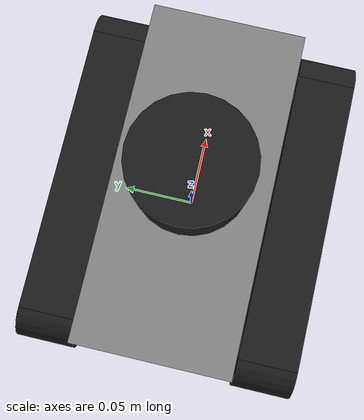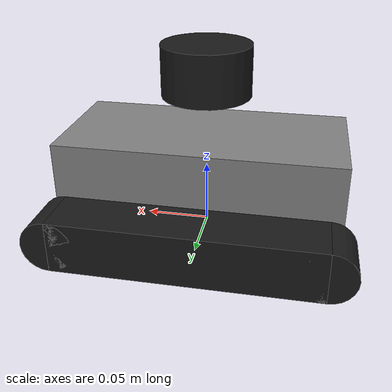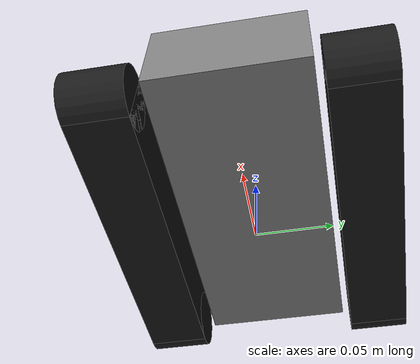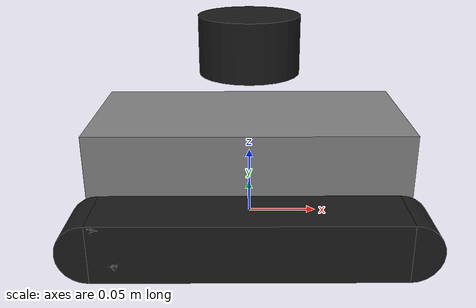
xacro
<?xml version="1.0"?>
<robot name="tsyp_robot" xmlns:xacro="http://www.ros.org/wiki/xacro">

  <xacro:property name="body_length" value="0.22"/>
  <xacro:property name="body_width" value="0.10"/>      <!-- chassis between the tracks -->
  <xacro:property name="body_height" value="0.06"/>
  <xacro:property name="body_z" value="0.02"/>          <!-- chassis bottom above ground -->
  <xacro:property name="track_length" value="0.20"/>    <!-- sprocket axle to idler axle -->
  <xacro:property name="track_width" value="0.04"/>
  <xacro:property name="track_separation" value="0.15"/>  <!-- track center to track center -->
  <xacro:property name="sprocket_radius" value="0.02"/>
  <xacro:property name="lidar_x" value="0.0"/>
  <xacro:property name="lidar_z" value="0.13"/>
  <xacro:property name="imu_z" value="0.05"/>

  <material name="grey"><color rgba="0.5 0.5 0.5 1"/></material>
  <material name="black"><color rgba="0.1 0.1 0.1 1"/></material>

  <!-- base_link: on the ground, at the center of the two tracks' contact patches
       (the turning center of a skid-steer robot) -->
  <link name="base_link">
    <visual>
      <origin xyz="0 0 ${body_z + body_height / 2}"/>
      <geometry><box size="${body_length} ${body_width} ${body_height}"/></geometry>
      <material name="grey"/>
    </visual>
    <collision>
      <origin xyz="0 0 ${body_z + body_height / 2}"/>
      <geometry><box size="${body_length} ${track_separation + track_width} ${body_height}"/></geometry>
    </collision>
  </link>

  <xacro:macro name="track" params="side y">
    <!-- Track belt: a box between the sprocket and idler axles -->
    <link name="${side}_track">
      <visual>
        <geometry><box size="${track_length} ${track_width} ${2 * sprocket_radius}"/></geometry>
        <material name="black"/>
      </visual>
      <collision>
        <geometry><box size="${track_length + 2 * sprocket_radius} ${track_width} ${2 * sprocket_radius}"/></geometry>
      </collision>
    </link>
    <joint name="${side}_track_joint" type="fixed">
      <parent link="base_link"/>
      <child link="${side}_track"/>
      <origin xyz="0 ${y} ${sprocket_radius}"/>
    </joint>

    <!-- Drive sprocket at the front (rotates, reported in /joint_states) -->
    <link name="${side}_sprocket">
      <visual>
        <origin rpy="${pi / 2} 0 0"/>
        <geometry><cylinder radius="${sprocket_radius}" length="${track_width}"/></geometry>
        <material name="black"/>
      </visual>
    </link>
    <joint name="${side}_sprocket_joint" type="continuous">
      <parent link="base_link"/>
      <child link="${side}_sprocket"/>
      <origin xyz="${track_length / 2} ${y} ${sprocket_radius}"/>
      <axis xyz="0 1 0"/>
    </joint>

    <!-- Idler at the rear (free-wheeling, shown fixed) -->
    <link name="${side}_idler">
      <visual>
        <origin rpy="${pi / 2} 0 0"/>
        <geometry><cylinder radius="${sprocket_radius}" length="${track_width}"/></geometry>
        <material name="black"/>
      </visual>
    </link>
    <joint name="${side}_idler_joint" type="fixed">
      <parent link="base_link"/>
      <child link="${side}_idler"/>
      <origin xyz="${-track_length / 2} ${y} ${sprocket_radius}"/>
    </joint>
  </xacro:macro>

  <xacro:track side="left" y="${track_separation / 2}"/>
  <xacro:track side="right" y="${-track_separation / 2}"/>

  <link name="laser_frame">
    <visual>
      <geometry><cylinder radius="0.035" length="0.04"/></geometry>
      <material name="black"/>
    </visual>
  </link>
  <joint name="laser_joint" type="fixed">
    <parent link="base_link"/>
    <child link="laser_frame"/>
    <origin xyz="${lidar_x} 0 ${lidar_z}"/>
  </joint>

  <!-- MPU6050: mount it with X forward and Z up, or rotate this joint to match -->
  <link name="imu_link"/>
  <joint name="imu_joint" type="fixed">
    <parent link="base_link"/>
    <child link="imu_link"/>
    <origin xyz="0 0 ${imu_z}"/>
  </joint>

</robot>
